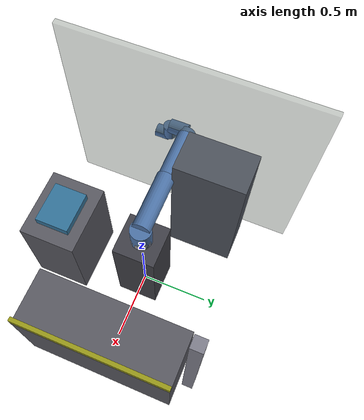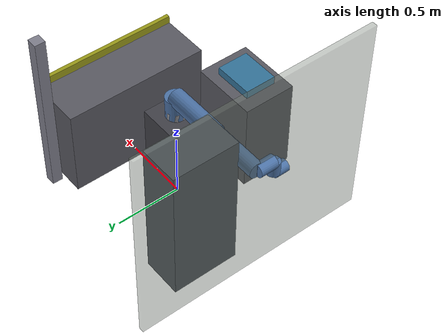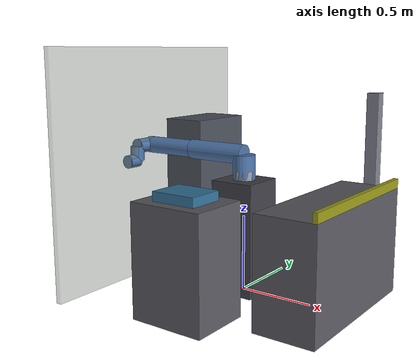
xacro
<?xml version="1.0"?>
<robot xmlns:xacro="http://www.ros.org/wiki/xacro" name="arm_cell">
  <xacro:arg name="prefix" default=""/>

  <xacro:include filename="$(find cell_description)/urdf/ur5e.urdf.xacro"/>
  <xacro:include filename="$(find cell_description)/urdf/cell.urdf.xacro"/>
  <xacro:include filename="$(find cell_description)/urdf/ros2_control.urdf.xacro"/>

  <link name="world"/>

  <xacro:arg name="with_fixtures" default="true"/>
  <xacro:if value="$(arg with_fixtures)">
    <xacro:cell_fixtures parent="world"/>
  </xacro:if>

  <xacro:ur5e prefix="$(arg prefix)" parent="world">
    <!-- Top of the pedestal. Matches frames.arm_base_xyz in cell.yaml. -->
    <origin xyz="0 0 0.75" rpy="0 0 0"/>
  </xacro:ur5e>

  <xacro:arg name="use_ros2_control" default="true"/>
  <xacro:if value="$(arg use_ros2_control)">
    <xacro:cell_ros2_control/>
  </xacro:if>
</robot>

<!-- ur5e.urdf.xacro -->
<!-- Generated by simulation/generate_cell.py from the public UR5e DH table. Do not edit by hand. -->
<robot xmlns:xacro="http://www.ros.org/wiki/xacro" name="ur5e">
  <xacro:macro name="ur5e" params="prefix parent *origin">
    <joint name="${prefix}base_fixed_joint" type="fixed">
      <xacro:insert_block name="origin"/>
      <parent link="${parent}"/>
      <child link="${prefix}base_link"/>
    </joint>
    <link name="${prefix}base_link">
      <visual>
        <origin xyz="0 0 0.03" rpy="0 0 0"/>
        <geometry><cylinder radius="0.075" length="0.06"/></geometry>
        <material name="ur_grey"><color rgba="0.6 0.6 0.62 1"/></material>
      </visual>
      <inertial>
        <mass value="4.0"/>
        <inertia ixx="0.0072" ixy="0" ixz="0" iyy="0.0072" iyz="0" izz="0.0125"/>
      </inertial>
    </link>
    <joint name="${prefix}shoulder_pan_joint" type="revolute">
      <origin xyz="0.000000 0 0.000000" rpy="0.000000 0 0"/>
      <parent link="${prefix}base_link"/>
      <child link="${prefix}shoulder_pan_link"/>
      <axis xyz="0 0 1"/>
      <limit lower="-6.283185" upper="6.283185" effort="150.0" velocity="3.141593"/>
    </joint>
    <link name="${prefix}shoulder_pan_link">
      <visual>
        <origin xyz="0.000000 0 0.081250" rpy="0 0.000000 0"/>
        <geometry><cylinder radius="0.0750" length="0.1625"/></geometry>
        <material name="ur_blue"><color rgba="0.3 0.45 0.65 1"/></material>
      </visual>
      <collision>
        <origin xyz="0.000000 0 0.081250" rpy="0 0.000000 0"/>
        <geometry><cylinder radius="0.0750" length="0.1625"/></geometry>
      </collision>
      <inertial>
        <mass value="3.7000"/>
        <inertia ixx="0.01" ixy="0" ixz="0" iyy="0.01" iyz="0" izz="0.005"/>
      </inertial>
    </link>
    <joint name="${prefix}shoulder_lift_joint" type="revolute">
      <origin xyz="0.000000 0 0.162500" rpy="1.570796 0 0"/>
      <parent link="${prefix}shoulder_pan_link"/>
      <child link="${prefix}shoulder_lift_link"/>
      <axis xyz="0 0 1"/>
      <limit lower="-6.283185" upper="6.283185" effort="150.0" velocity="3.141593"/>
    </joint>
    <link name="${prefix}shoulder_lift_link">
      <visual>
        <origin xyz="-0.212500 0 0.000000" rpy="0 -1.570796 0"/>
        <geometry><cylinder radius="0.0650" length="0.4250"/></geometry>
        <material name="ur_blue"><color rgba="0.3 0.45 0.65 1"/></material>
      </visual>
      <collision>
        <origin xyz="-0.212500 0 0.000000" rpy="0 -1.570796 0"/>
        <geometry><cylinder radius="0.0650" length="0.4250"/></geometry>
      </collision>
      <inertial>
        <mass value="8.3930"/>
        <inertia ixx="0.01" ixy="0" ixz="0" iyy="0.01" iyz="0" izz="0.005"/>
      </inertial>
    </link>
    <joint name="${prefix}elbow_joint" type="revolute">
      <origin xyz="-0.425000 0 0.000000" rpy="0.000000 0 0"/>
      <parent link="${prefix}shoulder_lift_link"/>
      <child link="${prefix}elbow_link"/>
      <axis xyz="0 0 1"/>
      <limit lower="-6.283185" upper="6.283185" effort="150.0" velocity="3.141593"/>
    </joint>
    <link name="${prefix}elbow_link">
      <visual>
        <origin xyz="-0.196100 0 0.000000" rpy="0 -1.570796 0"/>
        <geometry><cylinder radius="0.0580" length="0.3922"/></geometry>
        <material name="ur_blue"><color rgba="0.3 0.45 0.65 1"/></material>
      </visual>
      <collision>
        <origin xyz="-0.196100 0 0.000000" rpy="0 -1.570796 0"/>
        <geometry><cylinder radius="0.0580" length="0.3922"/></geometry>
      </collision>
      <inertial>
        <mass value="2.3300"/>
        <inertia ixx="0.01" ixy="0" ixz="0" iyy="0.01" iyz="0" izz="0.005"/>
      </inertial>
    </link>
    <joint name="${prefix}wrist_1_joint" type="revolute">
      <origin xyz="-0.392200 0 0.000000" rpy="0.000000 0 0"/>
      <parent link="${prefix}elbow_link"/>
      <child link="${prefix}wrist_1_link"/>
      <axis xyz="0 0 1"/>
      <limit lower="-6.283185" upper="6.283185" effort="150.0" velocity="3.141593"/>
    </joint>
    <link name="${prefix}wrist_1_link">
      <visual>
        <origin xyz="0.000000 0 0.066650" rpy="0 0.000000 0"/>
        <geometry><cylinder radius="0.0500" length="0.1333"/></geometry>
        <material name="ur_blue"><color rgba="0.3 0.45 0.65 1"/></material>
      </visual>
      <collision>
        <origin xyz="0.000000 0 0.066650" rpy="0 0.000000 0"/>
        <geometry><cylinder radius="0.0500" length="0.1333"/></geometry>
      </collision>
      <inertial>
        <mass value="1.2190"/>
        <inertia ixx="0.01" ixy="0" ixz="0" iyy="0.01" iyz="0" izz="0.005"/>
      </inertial>
    </link>
    <joint name="${prefix}wrist_2_joint" type="revolute">
      <origin xyz="0.000000 0 0.133300" rpy="1.570796 0 0"/>
      <parent link="${prefix}wrist_1_link"/>
      <child link="${prefix}wrist_2_link"/>
      <axis xyz="0 0 1"/>
      <limit lower="-6.283185" upper="6.283185" effort="150.0" velocity="3.141593"/>
    </joint>
    <link name="${prefix}wrist_2_link">
      <visual>
        <origin xyz="0.000000 0 0.049850" rpy="0 0.000000 0"/>
        <geometry><cylinder radius="0.0480" length="0.0997"/></geometry>
        <material name="ur_blue"><color rgba="0.3 0.45 0.65 1"/></material>
      </visual>
      <collision>
        <origin xyz="0.000000 0 0.049850" rpy="0 0.000000 0"/>
        <geometry><cylinder radius="0.0480" length="0.0997"/></geometry>
      </collision>
      <inertial>
        <mass value="1.2190"/>
        <inertia ixx="0.01" ixy="0" ixz="0" iyy="0.01" iyz="0" izz="0.005"/>
      </inertial>
    </link>
    <joint name="${prefix}wrist_3_joint" type="revolute">
      <origin xyz="0.000000 0 0.099700" rpy="-1.570796 0 0"/>
      <parent link="${prefix}wrist_2_link"/>
      <child link="${prefix}wrist_3_link"/>
      <axis xyz="0 0 1"/>
      <limit lower="-6.283185" upper="6.283185" effort="150.0" velocity="3.141593"/>
    </joint>
    <link name="${prefix}wrist_3_link">
      <visual>
        <origin xyz="0.000000 0 0.049800" rpy="0 0.000000 0"/>
        <geometry><cylinder radius="0.0450" length="0.0996"/></geometry>
        <material name="ur_blue"><color rgba="0.3 0.45 0.65 1"/></material>
      </visual>
      <collision>
        <origin xyz="0.000000 0 0.049800" rpy="0 0.000000 0"/>
        <geometry><cylinder radius="0.0450" length="0.0996"/></geometry>
      </collision>
      <inertial>
        <mass value="0.1879"/>
        <inertia ixx="0.01" ixy="0" ixz="0" iyy="0.01" iyz="0" izz="0.005"/>
      </inertial>
    </link>
    <joint name="${prefix}tool0_joint" type="fixed">
      <origin xyz="0.000000 0 0.099600" rpy="0.000000 0 0"/>
      <parent link="${prefix}wrist_3_link"/>
      <child link="${prefix}tool0"/>
    </joint>
    <link name="${prefix}tool0"/>
    <joint name="${prefix}tcp_joint" type="fixed">
      <origin xyz="0 0 0.163000" rpy="0 0 0"/>
      <parent link="${prefix}tool0"/>
      <child link="${prefix}tcp_link"/>
    </joint>
    <link name="${prefix}tcp_link"/>
    <joint name="${prefix}camera_joint" type="fixed">
      <origin xyz="0.000000 -0.082000 0.041000" rpy="0.000000 0.000000 -1.570796"/>
      <parent link="${prefix}tool0"/>
      <child link="${prefix}camera_optical_frame"/>
    </joint>
    <link name="${prefix}camera_optical_frame"/>
  </xacro:macro>
</robot>

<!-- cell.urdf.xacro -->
<!-- Generated by simulation/generate_cell.py from OBSTACLES. Do not edit by hand. -->
<robot xmlns:xacro="http://www.ros.org/wiki/xacro" name="cell">
  <xacro:macro name="cell_fixtures" params="parent">
    <joint name="pedestal_joint" type="fixed">
      <origin xyz="0.0000 0.0000 0.3750" rpy="0 0 0"/>
      <parent link="${parent}"/>
      <child link="pedestal_link"/>
    </joint>
    <link name="pedestal_link">
      <visual><geometry><box size="0.3000 0.3000 0.7500"/></geometry>
        <material name="pedestal_material"><color rgba="0.25 0.25 0.28 1"/></material></visual>
      <collision><geometry><box size="0.3000 0.3000 0.7500"/></geometry></collision>
      <inertial><mass value="0.0"/><inertia ixx="0" ixy="0" ixz="0" iyy="0" iyz="0" izz="0"/></inertial>
    </link>
    <joint name="conveyor_joint" type="fixed">
      <origin xyz="0.6300 0.0000 0.3500" rpy="0 0 0"/>
      <parent link="${parent}"/>
      <child link="conveyor_link"/>
    </joint>
    <link name="conveyor_link">
      <visual><geometry><box size="0.4000 1.1000 0.7000"/></geometry>
        <material name="conveyor_material"><color rgba="0.35 0.35 0.38 1"/></material></visual>
      <collision><geometry><box size="0.4000 1.1000 0.7000"/></geometry></collision>
      <inertial><mass value="0.0"/><inertia ixx="0" ixy="0" ixz="0" iyy="0" iyz="0" izz="0"/></inertial>
    </link>
    <joint name="conveyor_rail_far_joint" type="fixed">
      <origin xyz="0.8150 0.0000 0.7300" rpy="0 0 0"/>
      <parent link="${parent}"/>
      <child link="conveyor_rail_far_link"/>
    </joint>
    <link name="conveyor_rail_far_link">
      <visual><geometry><box size="0.0300 1.1000 0.0600"/></geometry>
        <material name="conveyor_rail_far_material"><color rgba="0.6 0.6 0.1 1"/></material></visual>
      <collision><geometry><box size="0.0300 1.1000 0.0600"/></geometry></collision>
      <inertial><mass value="0.0"/><inertia ixx="0" ixy="0" ixz="0" iyy="0" iyz="0" izz="0"/></inertial>
    </link>
    <joint name="camera_pillar_joint" type="fixed">
      <origin xyz="0.6200 0.6200 0.6500" rpy="0 0 0"/>
      <parent link="${parent}"/>
      <child link="camera_pillar_link"/>
    </joint>
    <link name="camera_pillar_link">
      <visual><geometry><box size="0.0800 0.0800 1.3000"/></geometry>
        <material name="camera_pillar_material"><color rgba="0.5 0.5 0.55 1"/></material></visual>
      <collision><geometry><box size="0.0800 0.0800 1.3000"/></geometry></collision>
      <inertial><mass value="0.0"/><inertia ixx="0" ixy="0" ixz="0" iyy="0" iyz="0" izz="0"/></inertial>
    </link>
    <joint name="bench_joint" type="fixed">
      <origin xyz="0.0000 -0.6000 0.3600" rpy="0 0 0"/>
      <parent link="${parent}"/>
      <child link="bench_link"/>
    </joint>
    <link name="bench_link">
      <visual><geometry><box size="0.5000 0.4000 0.7200"/></geometry>
        <material name="bench_material"><color rgba="0.35 0.35 0.38 1"/></material></visual>
      <collision><geometry><box size="0.5000 0.4000 0.7200"/></geometry></collision>
      <inertial><mass value="0.0"/><inertia ixx="0" ixy="0" ixz="0" iyy="0" iyz="0" izz="0"/></inertial>
    </link>
    <joint name="inspection_nest_joint" type="fixed">
      <origin xyz="0.0000 -0.6000 0.7500" rpy="0 0 0"/>
      <parent link="${parent}"/>
      <child link="inspection_nest_link"/>
    </joint>
    <link name="inspection_nest_link">
      <visual><geometry><box size="0.3000 0.2400 0.0600"/></geometry>
        <material name="inspection_nest_material"><color rgba="0.2 0.45 0.6 1"/></material></visual>
      <collision><geometry><box size="0.3000 0.2400 0.0600"/></geometry></collision>
      <inertial><mass value="0.0"/><inertia ixx="0" ixy="0" ixz="0" iyy="0" iyz="0" izz="0"/></inertial>
    </link>
    <joint name="control_cabinet_joint" type="fixed">
      <origin xyz="-0.5500 0.3000 0.5500" rpy="0 0 0"/>
      <parent link="${parent}"/>
      <child link="control_cabinet_link"/>
    </joint>
    <link name="control_cabinet_link">
      <visual><geometry><box size="0.3000 0.5000 1.1000"/></geometry>
        <material name="control_cabinet_material"><color rgba="0.3 0.32 0.36 1"/></material></visual>
      <collision><geometry><box size="0.3000 0.5000 1.1000"/></geometry></collision>
      <inertial><mass value="0.0"/><inertia ixx="0" ixy="0" ixz="0" iyy="0" iyz="0" izz="0"/></inertial>
    </link>
    <joint name="rear_guard_joint" type="fixed">
      <origin xyz="-0.8000 0.0000 0.8000" rpy="0 0 0"/>
      <parent link="${parent}"/>
      <child link="rear_guard_link"/>
    </joint>
    <link name="rear_guard_link">
      <visual><geometry><box size="0.0400 1.8000 1.6000"/></geometry>
        <material name="rear_guard_material"><color rgba="0.45 0.5 0.45 0.4"/></material></visual>
      <collision><geometry><box size="0.0400 1.8000 1.6000"/></geometry></collision>
      <inertial><mass value="0.0"/><inertia ixx="0" ixy="0" ixz="0" iyy="0" iyz="0" izz="0"/></inertial>
    </link>
  </xacro:macro>
</robot>
